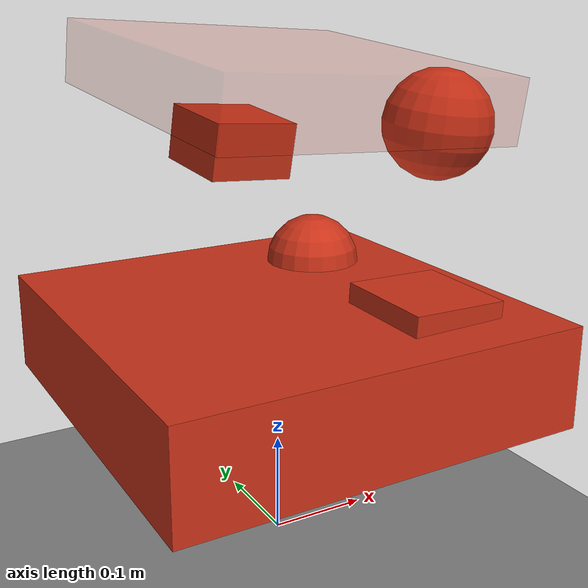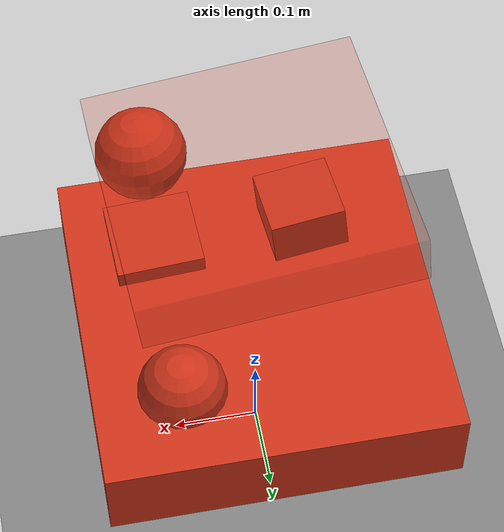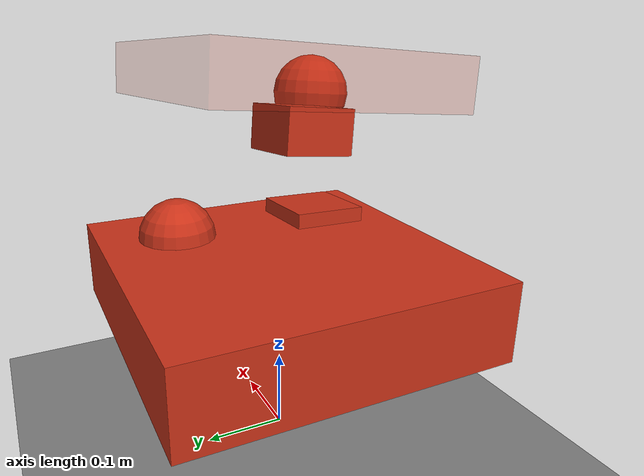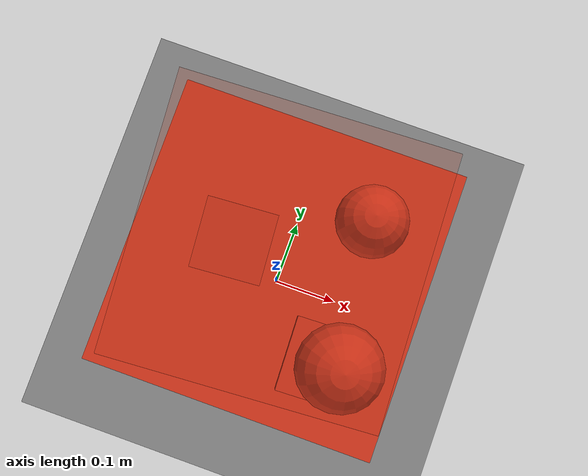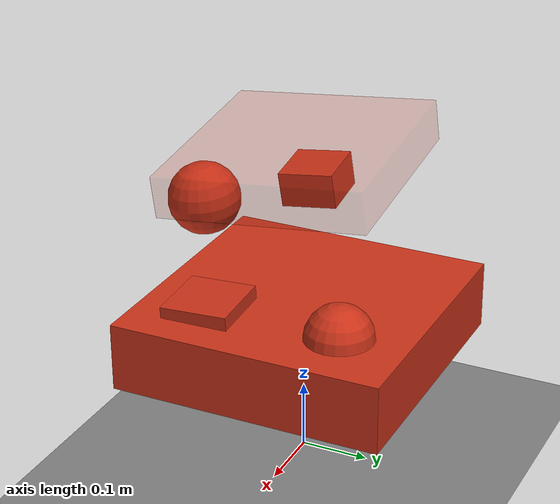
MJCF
<mujoco model="contact net">
  <statistic meansize="0.05"/>

  <default>
    <geom condim="6"/>
  </default>

  <worldbody>
    <light pos="0 0 3"/>
    <geom name="floor" type="plane" size=".5 1 .01"/>

    <body name="b1" pos="0 0 .4" euler="5 4 3">
      <freejoint/>
      <geom type="box" pos="0 0 .06" size=".15 .15 .03" rgba=".8 .2 .1 .2"/>
      <geom type="box" pos="-.05 0 .005" size=".04 .04 .025" rgba=".8 .2 .1 1" euler="1 1 1"/>
      <geom size=".05" pos=".1 -.1 .04" rgba=".8 .2 .1 1"/>
    </body>

    <body name="b2" pos="0 0 .2">
      <joint type="ball" springdamper="0.1 1"/>
      <geom type="box" size=".2 .2 .05" rgba=".8 .2 .1 1"/>
      <geom size=".05" pos=".1 .1 .05" rgba=".8 .2 .1 1"/>
      <geom type="box" size=".05 .05 .01" pos=".1 -.1 .06" rgba=".8 .2 .1 1" euler="2 2 2"/>
    </body>
  </worldbody>

  <sensor>
    <contact name="net12" body1="b1" body2="b2" data="force torque pos" reduce="netforce"/>
    <contact name="net21" body1="b2" body2="b1" data="force torque pos" reduce="netforce"/>
  </sensor>
</mujoco>
